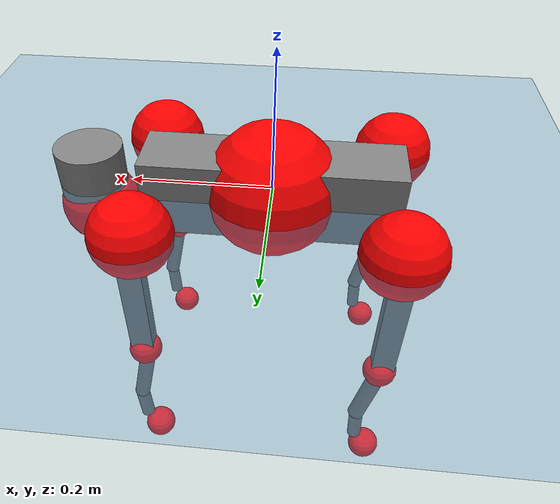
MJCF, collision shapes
<mujoco model="go2">
  <compiler angle="radian" assetdir="assets" balanceinertia="true" inertiafromgeom="false"/>

  <option timestep="0.005" density="1.2" viscosity="2e-05"/>

  <size nkey="1"/>

  <visual>
    <quality shadowsize="8192"/>
    <map shadowclip="0.5"/>
  </visual>

  <default>
    <default class="/">
      <geom contype="0" conaffinity="0" group="1" solref="-1000 -80"/>
      <site size="0.01 0.005 0.005" group="5"/>
      <general forcelimited="true" biastype="affine" gainprm="20" biasprm="0 -20 -0.5"/>
      <default class="go2">
        <joint armature="0.01" damping="0.01" frictionloss="0.2"/>
        <geom condim="1" margin="0.001"/>
        <default class="visual">
          <geom type="mesh" group="2"/>
        </default>
        <default class="collision">
          <geom group="3"/>
          <default class="foot">
            <geom size="0.022 0 0" condim="6" priority="1" friction="0.8 0.02 0.01" solimp="0.015 1 0.022"/>
          </default>
        </default>
        <default class="reward_collision_sphere">
          <geom group="5" rgba="1 0 0 1"/>
        </default>
      </default>
    </default>
  </default>

  <asset>
    <texture type="skybox" colorspace="auto" name="//unnamed_texture_0" builtin="gradient" rgb1="0.95 0.95 0.95" rgb2="0.95 0.95 0.95" width="100" height="600"/>
    <texture type="2d" colorspace="auto" name="texplane" builtin="checker" rgb1="0.345 0.575 0.748" rgb2="0.345 0.575 0.748" markrgb="1 1 1" width="512" height="512"/>
    <material name="MatPlane" class="/" texture="texplane" texuniform="true" texrepeat="2 2" specular="0.9"/>
    <material name="metal" class="/" rgba="0.9 0.95 0.95 1"/>
    <material name="black" class="/" rgba="0 0 0 1"/>
    <material name="white" class="/"/>
    <material name="gray" class="/" rgba="0.671705 0.692426 0.77427 1"/>
    <mesh name="base_0" class="/" file="base_0.obj"/>
    <mesh name="base_1" class="/" file="base_1.obj"/>
    <mesh name="base_2" class="/" file="base_2.obj"/>
    <mesh name="base_3" class="/" file="base_3.obj"/>
    <mesh name="base_4" class="/" file="base_4.obj"/>
    <mesh name="hip_0" class="/" file="hip_0.obj"/>
    <mesh name="hip_1" class="/" file="hip_1.obj"/>
    <mesh name="thigh_0" class="/" file="thigh_0.obj"/>
    <mesh name="thigh_1" class="/" file="thigh_1.obj"/>
    <mesh name="thigh_mirror_0" class="/" file="thigh_mirror_0.obj"/>
    <mesh name="thigh_mirror_1" class="/" file="thigh_mirror_1.obj"/>
    <mesh name="calf_0" class="/" file="calf_0.obj"/>
    <mesh name="calf_1" class="/" file="calf_1.obj"/>
    <mesh name="calf_mirror_0" class="/" file="calf_mirror_0.obj"/>
    <mesh name="calf_mirror_1" class="/" file="calf_mirror_1.obj"/>
    <mesh name="foot" class="/" file="foot.obj"/>
  </asset>

  <worldbody>
    <geom name="floor" class="/" size="100 100 0.125" type="plane" group="0" material="MatPlane"/>
    <light name="toplight_shadow" class="/" pos="0 0 5" dir="0.0990148 0.0990148 -0.990148" type="directional" ambient="0.04 0.04 0.04" diffuse="0.55 0.55 0.55" specular="0.12 0.12 0.12"/>
    <light name="toplight_fill" class="/" pos="0 0 5" dir="0.0990148 0.0990148 -0.990148" type="directional" castshadow="false" ambient="0.04 0.04 0.04" diffuse="0.3 0.3 0.3" specular="0.08 0.08 0.08"/>
    <body name="trunk" childclass="go2" pos="7.37639e-05 -6.84468e-05 -0.0010969" quat="1 3.44436e-05 -1.9198e-05 -0.000106023">
      <inertial pos="0.0193763 0.00227126 -0.00338774" quat="-0.000172484 0.713248 -0.00165044 0.70091" mass="5.97745" diaginertia="0.0649951 0.119056 0.0164026"/>
      <joint name="//unnamed_joint_0" type="free" armature="0" damping="0" frictionloss="0"/>
      <geom name="//unnamed_geom_1" class="visual" material="black" mesh="base_0"/>
      <geom name="//unnamed_geom_2" class="visual" material="black" mesh="base_1"/>
      <geom name="//unnamed_geom_3" class="visual" material="black" mesh="base_2"/>
      <geom name="//unnamed_geom_4" class="visual" material="white" mesh="base_3"/>
      <geom name="//unnamed_geom_5" class="visual" material="gray" mesh="base_4"/>
      <geom name="trunk_1" class="collision" size="0.179353 0.0445761 0.0543495" type="box"/>
      <geom name="trunk_2" class="collision" size="0.047675 0.0429075" pos="0.25641 0 0.00923407" type="cylinder"/>
      <geom name="trunk_3" class="collision" size="0.0448145" pos="0.263608 0 -0.0554044"/>
      <geom name="//unnamed_geom_9" class="reward_collision_sphere" size="0.0953499"/>
      <geom name="//unnamed_geom_10" class="reward_collision_sphere" size="0.05721" pos="0.251912 0 -0.0415533"/>
      <site name="imu" pos="-0.0280755 2.92012e-05 0.0343845" size="0.00953499"/>
      <camera name="track" pos="0 -2.07481 0" quat="0.707107 0.707107 0 0" mode="trackcom"/>
      <camera name="ego_camera" pos="0.280702 0 0.0415533" quat="-0.5 -0.5 0.5 0.5"/>
      <body name="FL_hip" pos="0.172937 0.0482556 7.18611e-05" quat="1 -9.43692e-05 0.000266469 3.37636e-05">
        <inertial pos="-0.00675732 0.00179666 -5.64182e-05" quat="0.49698 0.49928 0.50518 0.498521" mass="0.602748" diaginertia="0.000528416 0.000726619 0.000327008"/>
        <joint name="FL_hip_joint" pos="0 0 0" axis="0.999993 -0.0037122 0.000837548" stiffness="0.00285723" range="-1.03363 1.0469" armature="0.00972116" damping="0.00524283" frictionloss="0.172954"/>
        <geom name="//unnamed_geom_11" class="visual" material="metal" mesh="hip_0"/>
        <geom name="//unnamed_geom_12" class="visual" material="gray" mesh="hip_1"/>
        <geom name="//unnamed_geom_13" class="collision" size="0.043861 0.01907" pos="0 0.0829925 0" quat="0.707107 0.707107 0 0" type="cylinder"/>
        <geom name="//unnamed_geom_14" class="reward_collision_sphere" size="0.05721" pos="0 0.0726184 0"/>
        <body name="FL_thigh" pos="-0.00164285 0.098479 0.00206124" quat="1 -4.20512e-06 -5.02598e-05 -2.70663e-05">
          <inertial pos="-0.00388698 -0.0229164 -0.0299559" quat="0.830053 0.0848813 -0.0182504 0.550886" mass="0.959984" diaginertia="0.00351379 0.0069605 0.000555509"/>
          <joint name="FL_thigh_joint" pos="0 0 0" axis="0.00502448 0.999985 0.0020844" stiffness="0.0056464" range="-1.58083 3.48029" armature="0.00921582" damping="0.00708159" frictionloss="0.194722"/>
          <geom name="//unnamed_geom_15" class="visual" material="metal" mesh="thigh_0"/>
          <geom name="//unnamed_geom_16" class="visual" material="gray" mesh="thigh_1"/>
          <geom name="//unnamed_geom_17" class="collision" size="0.101548 0.0116804 0.0162095" pos="0 0 -0.0983429" quat="0.707107 0 0.707107 0" type="box"/>
          <body name="FL_calf" pos="-0.00119682 0.000128107 -0.195299" quat="0.999999 -0.000558679 0.00054864 -0.000960212">
            <inertial pos="0.00507068 -0.000521597 -0.12999" quat="0.710763 0.00148923 -0.00468455 0.703415" mass="0.208257" diaginertia="0.000879503 0.0017186 3.53299e-05"/>
            <joint name="FL_calf_joint" pos="0 0 0" axis="-0.00760996 0.999965 -0.00334444" stiffness="0.000806139" range="-2.7185 -0.830954" armature="0.00983728" damping="0.00935121" frictionloss="0.180215"/>
            <geom name="//unnamed_geom_18" class="visual" material="gray" mesh="calf_0"/>
            <geom name="//unnamed_geom_19" class="visual" material="black" mesh="calf_1"/>
            <geom name="FL_calf0" class="collision" size="0.011442 0.05721" pos="0.00719748 0 -0.0554044" quat="0.994493 0 -0.104807 0" type="cylinder"/>
            <geom name="//unnamed_geom_21" class="collision" size="0.0104885 0.0309887" pos="0.0179937 0 -0.136664" quat="0.999688 0 0.0249974 0" type="cylinder"/>
            <geom name="//unnamed_geom_22" class="visual" pos="0 0 -0.196686" quat="1 0 0 0" material="black" mesh="foot"/>
            <geom name="FL_foot" class="foot" size="0.018768" pos="-0.00179937 0 -0.196686"/>
            <geom name="//unnamed_geom_24" class="reward_collision_sphere" size="0.0238375"/>
            <geom name="//unnamed_geom_25" class="reward_collision_sphere" size="0.0238375" pos="-0.00179937 0 -0.196686"/>
            <site name="FL_foot" class="foot" pos="-0.00179937 0 -0.196686" size="0.00953499"/>
          </body>
        </body>
      </body>
      <body name="FR_hip" pos="0.173737 -0.047853 -0.000604957" quat="1 0.000552564 -2.90602e-05 -0.000591207">
        <inertial pos="-0.00485458 -0.00150421 0.000218538" quat="0.498757 0.505392 0.498158 0.497653" mass="0.563922" diaginertia="0.000503133 0.000699272 0.000322126"/>
        <joint name="FR_hip_joint" pos="0 0 0" axis="0.99999 0.00281352 -0.00350005" stiffness="0.00093096" range="-1.01855 1.00193" armature="0.00960625" damping="0.0106294" frictionloss="0.185178"/>
        <geom name="//unnamed_geom_26" class="visual" pos="0 9.93112e-10 4.25966e-08" quat="4.63268e-05 1 0 0" material="metal" mesh="hip_0"/>
        <geom name="//unnamed_geom_27" class="visual" pos="0 1.60995e-09 -1.05358e-07" quat="4.63268e-05 1 0 0" material="gray" mesh="hip_1"/>
        <geom name="//unnamed_geom_28" class="collision" size="0.043861 0.01907" pos="0 -0.0829925 0" quat="0.707107 0.707107 0 0" type="cylinder"/>
        <geom name="//unnamed_geom_29" class="reward_collision_sphere" size="0.05721" pos="0 -0.0726184 0"/>
        <body name="FR_thigh" pos="0.00297177 -0.0979882 0.000853754" quat="1 0.000188438 -8.68616e-05 0.000466333">
          <inertial pos="-0.00263737 0.0233157 -0.0300852" quat="0.551608 -0.0208648 0.0851207 0.829486" mass="1.03534" diaginertia="0.0035143 0.00730919 0.000604749"/>
          <joint name="FR_thigh_joint" pos="0 0 0" axis="-0.00848568 -0.999954 -0.00436893" range="-3.43893 1.52156" armature="0.00949969" damping="0.000668101" frictionloss="0.198757"/>
          <geom name="//unnamed_geom_30" class="visual" material="metal" mesh="thigh_mirror_0"/>
          <geom name="//unnamed_geom_31" class="visual" material="gray" mesh="thigh_mirror_1"/>
          <geom name="//unnamed_geom_32" class="collision" size="0.101548 0.0116804 0.0162095" pos="0 0 -0.0983429" quat="0.707107 0 0.707107 0" type="box"/>
          <body name="FR_calf" pos="0.00223352 -0.00103932 -0.196276" quat="1 0.000285066 4.35637e-05 0.000154445">
            <inertial pos="0.00648574 0.00161694 -0.128368" quat="0.704246 -0.00808602 -0.00209492 0.709907" mass="0.202151" diaginertia="0.000880144 0.00175413 3.56041e-05"/>
            <joint name="FR_calf_joint" pos="0 0 0" axis="-0.00957093 -0.999947 0.00378699" stiffness="0.00186115" range="0.817655 2.68409" armature="0.00961183" damping="0.017789" frictionloss="0.165992"/>
            <geom name="//unnamed_geom_33" class="visual" material="gray" mesh="calf_mirror_0"/>
            <geom name="//unnamed_geom_34" class="visual" material="black" mesh="calf_mirror_1"/>
            <geom name="FR_calf0" class="collision" size="0.0123955 0.05721" pos="0.00899685 0 -0.0554044" quat="0.995004 0 -0.0998334 0" type="cylinder"/>
            <geom name="//unnamed_geom_36" class="collision" size="0.0104885 0.0309887" pos="0.0179937 0 -0.136664" quat="0.999688 0 0.0249974 0" type="cylinder"/>
            <geom name="//unnamed_geom_37" class="visual" pos="0 0 -0.196686" quat="1 0 0 0" material="black" mesh="foot"/>
            <geom name="FR_foot" class="foot" size="0.0225075" pos="-0.00179937 0 -0.196686"/>
            <geom name="//unnamed_geom_39" class="reward_collision_sphere" size="0.0238375"/>
            <geom name="//unnamed_geom_40" class="reward_collision_sphere" size="0.0238375" pos="-0.00179937 0 -0.196686"/>
            <site name="FR_foot" class="foot" pos="-0.00179937 0 -0.196686" size="0.00953499"/>
          </body>
        </body>
      </body>
      <body name="RL_hip" pos="-0.172958 0.0502102 -0.00120138" quat="1 0.000325809 -0.000251808 0.000169099">
        <inertial pos="0.00513347 0.000474881 -0.000622613" quat="0.495837 0.504394 0.494637 0.505041" mass="0.568769" diaginertia="0.000514579 0.000722669 0.000324898"/>
        <joint name="RL_hip_joint" pos="0 0 0" axis="-0.999808 -0.0133708 0.0143471" range="-1.06344 1.0518" armature="0.00961293" damping="0.00794774" frictionloss="0.188604"/>
        <geom name="//unnamed_geom_41" class="visual" pos="2.06664e-10 0 4.05109e-08" quat="4.63268e-05 0 1 0" material="metal" mesh="hip_0"/>
        <geom name="//unnamed_geom_42" class="visual" pos="3.35027e-10 0 3.59274e-08" quat="4.63268e-05 0 1 0" material="gray" mesh="hip_1"/>
        <geom name="//unnamed_geom_43" class="collision" size="0.043861 0.01907" pos="0 0.0829925 0" quat="0.707107 0.707107 0 0" type="cylinder"/>
        <geom name="//unnamed_geom_44" class="reward_collision_sphere" size="0.05721" pos="0 0.0726184 0"/>
        <body name="RL_thigh" pos="-0.000306585 0.097087 -0.000839292" quat="1 -7.17529e-06 -3.76297e-06 -4.53918e-06">
          <inertial pos="-0.00232387 -0.023909 -0.0303038" quat="0.827576 0.0828732 -0.0187662 0.554885" mass="1.00613" diaginertia="0.00363084 0.00722467 0.000604683"/>
          <joint name="RL_thigh_joint" pos="0 0 0" axis="0.0114365 0.999929 0.00324243" stiffness="0.00165376" range="-0.5192 4.54408" armature="0.00945052" damping="0.00812808" frictionloss="0.190422"/>
          <geom name="//unnamed_geom_45" class="visual" material="metal" mesh="thigh_0"/>
          <geom name="//unnamed_geom_46" class="visual" material="gray" mesh="thigh_1"/>
          <geom name="//unnamed_geom_47" class="collision" size="0.101548 0.0116804 0.0162095" pos="0 0 -0.0983429" quat="0.707107 0 0.707107 0" type="box"/>
          <body name="RL_calf" pos="0.00196971 0.000360616 -0.196536" quat="1 -0.000593561 0.00075112 -0.000221723">
            <inertial pos="0.0071691 0.000506324 -0.131493" quat="0.710689 0.00117248 -0.00466643 0.70349" mass="0.210214" diaginertia="0.000918902 0.00186795 3.80396e-05"/>
            <joint name="RL_calf_joint" pos="0 0 0" axis="-0.00205423 0.999874 -0.0157334" range="-2.72168 -0.888401" armature="0.00942877" damping="0.00343711" frictionloss="0.187153"/>
            <geom name="//unnamed_geom_48" class="visual" material="gray" mesh="calf_0"/>
            <geom name="//unnamed_geom_49" class="visual" material="black" mesh="calf_1"/>
            <geom name="RL_calf0" class="collision" size="0.0123955 0.05721" pos="0.00899685 0 -0.0554044" quat="0.995004 0 -0.0998334 0" type="cylinder"/>
            <geom name="//unnamed_geom_51" class="collision" size="0.0104885 0.0309887" pos="0.0179937 0 -0.136664" quat="0.999688 0 0.0249974 0" type="cylinder"/>
            <geom name="//unnamed_geom_52" class="visual" pos="0 0 -0.196686" quat="1 0 0 0" material="black" mesh="foot"/>
            <geom name="RL_foot" class="foot" size="0.0165017" pos="-0.00179937 0 -0.196686"/>
            <geom name="//unnamed_geom_54" class="reward_collision_sphere" size="0.0238375"/>
            <geom name="//unnamed_geom_55" class="reward_collision_sphere" size="0.0238375" pos="-0.00179937 0 -0.196686"/>
            <site name="RL_foot" class="foot" pos="-0.00179937 0 -0.196686" size="0.00953499"/>
          </body>
        </body>
      </body>
      <body name="RR_hip" pos="-0.173683 -0.048161 -0.00254363" quat="0.999999 0.000865362 0.000327049 0.000513438">
        <inertial pos="0.00399443 -0.00234512 0.000693756" quat="0.504701 0.501469 0.487348 0.506258" mass="0.589878" diaginertia="0.000519617 0.000712888 0.000319505"/>
        <joint name="RR_hip_joint" pos="0 0 0" axis="-0.999989 -0.00244531 0.00395924" stiffness="0.000354508" range="-1.08654 1.03129" armature="0.00844376" damping="0.0108906" frictionloss="0.195303"/>
        <geom name="//unnamed_geom_56" class="visual" pos="-2.01896e-10 9.93112e-10 -2.08577e-09" quat="2.14617e-09 4.63268e-05 4.63268e-05 -1" material="metal" mesh="hip_0"/>
        <geom name="//unnamed_geom_57" class="visual" pos="-3.4682e-10 1.60995e-09 1.41285e-07" quat="2.14617e-09 4.63268e-05 4.63268e-05 -1" material="gray" mesh="hip_1"/>
        <geom name="//unnamed_geom_58" class="collision" size="0.043861 0.01907" pos="0 -0.0829925 0" quat="0.707107 0.707107 0 0" type="cylinder"/>
        <geom name="//unnamed_geom_59" class="reward_collision_sphere" size="0.05721" pos="0 -0.0726184 0"/>
        <body name="RR_thigh" pos="-0.000134918 -0.0992177 -0.00326691" quat="1 -0.000202877 3.48948e-05 -7.85342e-05">
          <inertial pos="-0.00318688 0.0258376 -0.0301652" quat="0.557643 -0.0228132 0.0860229 0.825297" mass="0.964158" diaginertia="0.00337014 0.0067904 0.000567646"/>
          <joint name="RR_thigh_joint" pos="0 0 0" axis="0.00264652 -0.999994 0.0023462" stiffness="0.00364625" range="-4.55478 0.476631" armature="0.0108983" damping="0.013056" frictionloss="0.180638"/>
          <geom name="//unnamed_geom_60" class="visual" material="metal" mesh="thigh_mirror_0"/>
          <geom name="//unnamed_geom_61" class="visual" material="gray" mesh="thigh_mirror_1"/>
          <geom name="//unnamed_geom_62" class="collision" size="0.101548 0.0116804 0.0162095" pos="0 0 -0.0983429" quat="0.707107 0 0.707107 0" type="box"/>
          <body name="RR_calf" pos="-0.000839099 -0.00223958 -0.197002" quat="1 0.000521056 0.000216835 -0.000507651">
            <inertial pos="0.00505491 0.000663523 -0.13028" quat="0.709349 -0.00124848 -0.00731522 0.704819" mass="0.204027" diaginertia="0.000875745 0.00178827 3.69756e-05"/>
            <joint name="RR_calf_joint" pos="0 0 0" axis="0.00511865 -0.999979 -0.00393306" stiffness="0.0094426" range="0.871893 2.76922" armature="0.00933517" damping="0.0137439" frictionloss="0.18982"/>
            <geom name="//unnamed_geom_63" class="visual" material="gray" mesh="calf_mirror_0"/>
            <geom name="//unnamed_geom_64" class="visual" material="black" mesh="calf_mirror_1"/>
            <geom name="RR_calf0" class="collision" size="0.0123955 0.05721" pos="0.00899685 0 -0.0554044" quat="0.995004 0 -0.0998334 0" type="cylinder"/>
            <geom name="//unnamed_geom_66" class="collision" size="0.0104885 0.0309887" pos="0.0179937 0 -0.136664" quat="0.999688 0 0.0249974 0" type="cylinder"/>
            <geom name="//unnamed_geom_67" class="visual" pos="0 0 -0.196686" quat="1 0 0 0" material="black" mesh="foot"/>
            <geom name="RR_foot" class="foot" size="0.0206894" pos="-0.00179937 0 -0.196686"/>
            <geom name="//unnamed_geom_69" class="reward_collision_sphere" size="0.0238375"/>
            <geom name="//unnamed_geom_70" class="reward_collision_sphere" size="0.0238375" pos="-0.00179937 0 -0.196686"/>
            <site name="RR_foot" class="foot" pos="-0.00179937 0 -0.196686" size="0.00953499"/>
          </body>
        </body>
      </body>
    </body>
  </worldbody>

  <contact>
    <pair class="/" geom1="floor" geom2="FL_foot" name="//unnamed_contact_0"/>
    <pair class="/" geom1="floor" geom2="FR_foot" name="//unnamed_contact_1"/>
    <pair class="/" geom1="floor" geom2="RL_foot" name="//unnamed_contact_2"/>
    <pair class="/" geom1="floor" geom2="RR_foot" name="//unnamed_contact_3"/>
  </contact>

  <actuator>
    <general name="FL_hip" class="/" joint="FL_hip_joint" forcerange="-22.4627 22.4627" gainprm="20.3296" biasprm="0 -20.3296 -0.467169"/>
    <general name="FL_thigh" class="/" joint="FL_thigh_joint" forcerange="-20.457 20.457" gainprm="20.3296" biasprm="0 -20.3296 -0.467169"/>
    <general name="FL_calf" class="/" joint="FL_calf_joint" forcerange="-41.5368 41.5368" gainprm="20.3296" biasprm="0 -20.3296 -0.467169"/>
    <general name="FR_hip" class="/" joint="FR_hip_joint" forcerange="-23.3879 23.3879" gainprm="20.3296" biasprm="0 -20.3296 -0.467169"/>
    <general name="FR_thigh" class="/" joint="FR_thigh_joint" forcerange="-21.6848 21.6848" gainprm="20.3296" biasprm="0 -20.3296 -0.467169"/>
    <general name="FR_calf" class="/" joint="FR_calf_joint" forcerange="-44.0858 44.0858" gainprm="20.3296" biasprm="0 -20.3296 -0.467169"/>
    <general name="RL_hip" class="/" joint="RL_hip_joint" forcerange="-23.2739 23.2739" gainprm="20.3296" biasprm="0 -20.3296 -0.467169"/>
    <general name="RL_thigh" class="/" joint="RL_thigh_joint" forcerange="-22.6321 22.6321" gainprm="20.3296" biasprm="0 -20.3296 -0.467169"/>
    <general name="RL_calf" class="/" joint="RL_calf_joint" forcerange="-43.6135 43.6135" gainprm="20.3296" biasprm="0 -20.3296 -0.467169"/>
    <general name="RR_hip" class="/" joint="RR_hip_joint" forcerange="-20.4294 20.4294" gainprm="20.3296" biasprm="0 -20.3296 -0.467169"/>
    <general name="RR_thigh" class="/" joint="RR_thigh_joint" forcerange="-22.9258 22.9258" gainprm="20.3296" biasprm="0 -20.3296 -0.467169"/>
    <general name="RR_calf" class="/" joint="RR_calf_joint" forcerange="-43.9525 43.9525" gainprm="20.3296" biasprm="0 -20.3296 -0.467169"/>
  </actuator>

  <sensor>
    <gyro site="imu" name="imu_angular_velocity"/>
    <velocimeter site="imu" name="imu_linear_velocity"/>
    <framelinvel objtype="site" objname="FL_foot" name="FL_foot_global_linear_velocity"/>
    <framelinvel objtype="site" objname="FR_foot" name="FR_foot_global_linear_velocity"/>
    <framelinvel objtype="site" objname="RL_foot" name="RL_foot_global_linear_velocity"/>
    <framelinvel objtype="site" objname="RR_foot" name="RR_foot_global_linear_velocity"/>
  </sensor>

  <keyframe>
    <key name="home" qpos="0 0 0.325 1 0 0 0 0.1 0.8 -1.5 -0.1 -0.8 1.5 -0.1 0.8 -1.5 0.1 -0.8 1.5"/>
  </keyframe>
</mujoco>
